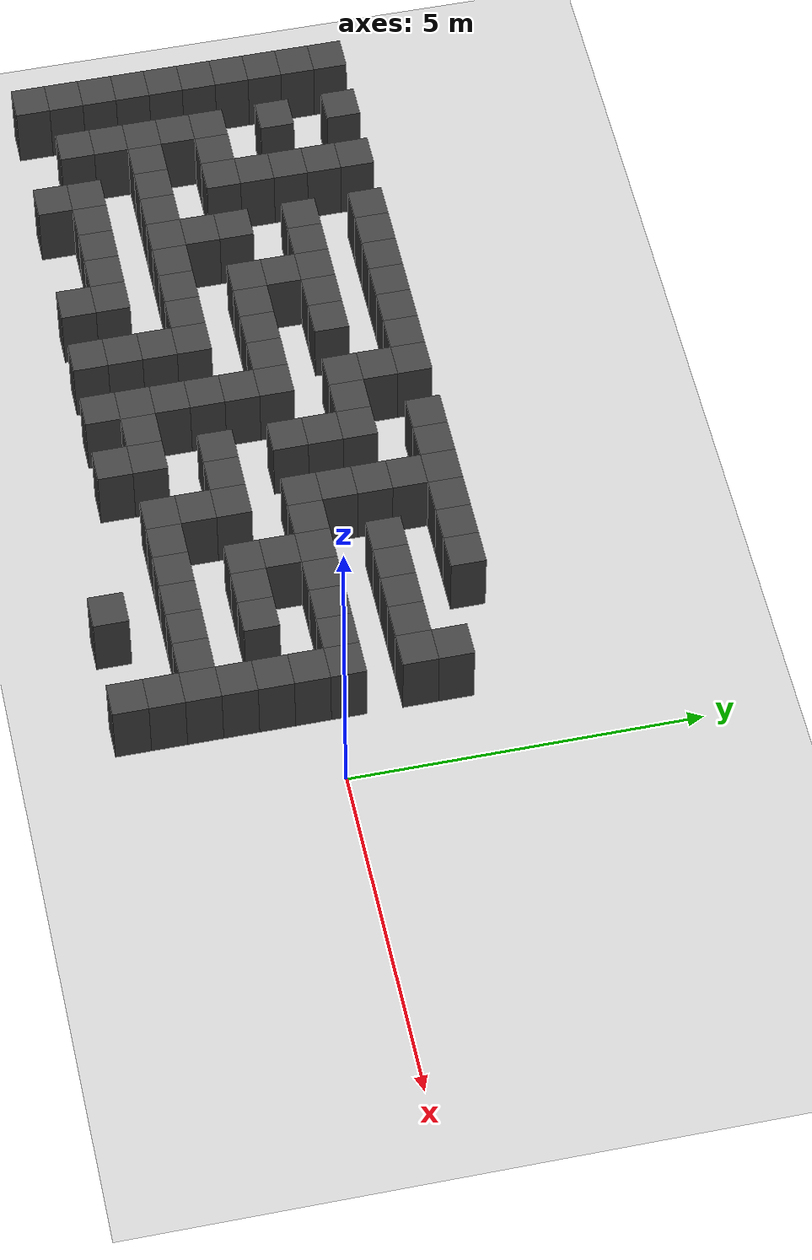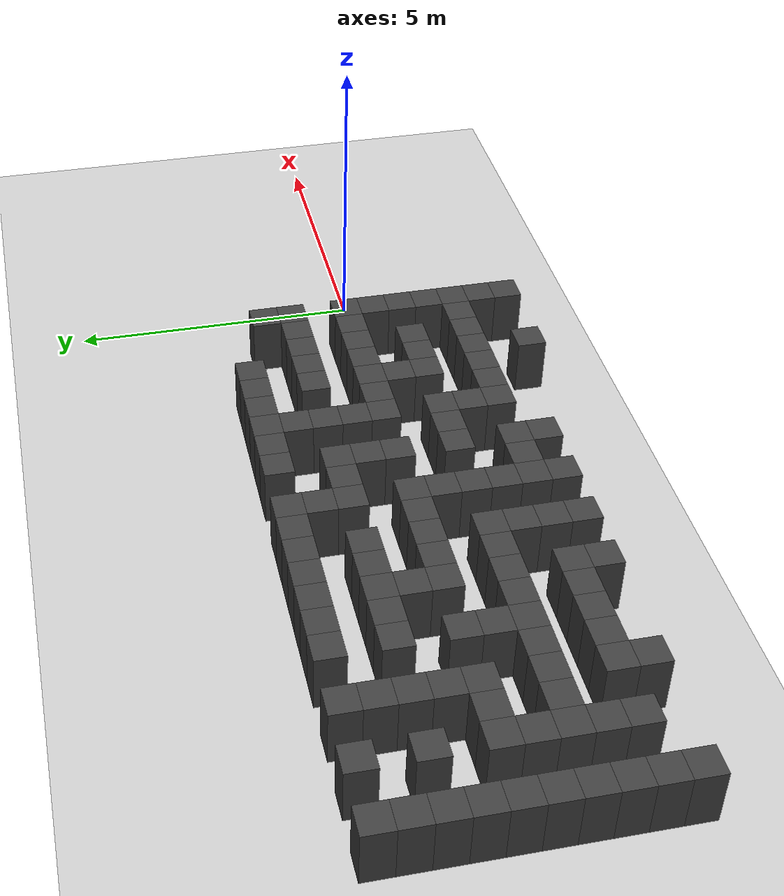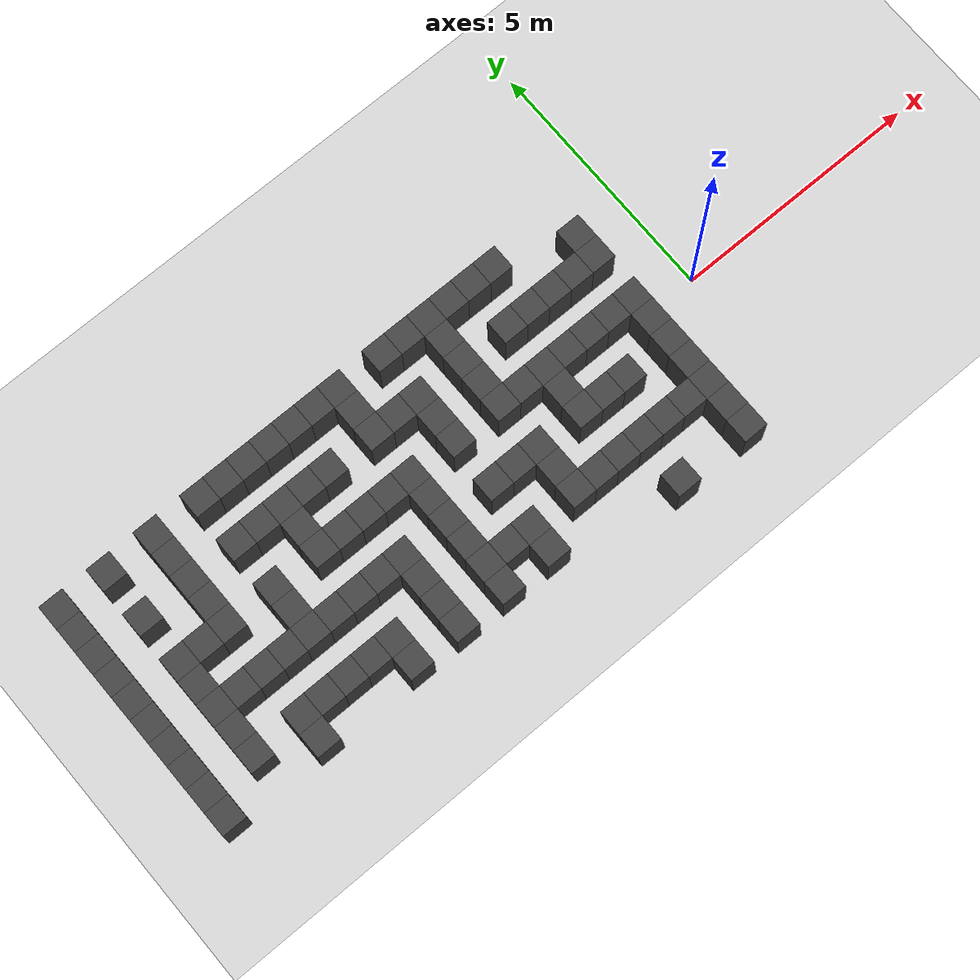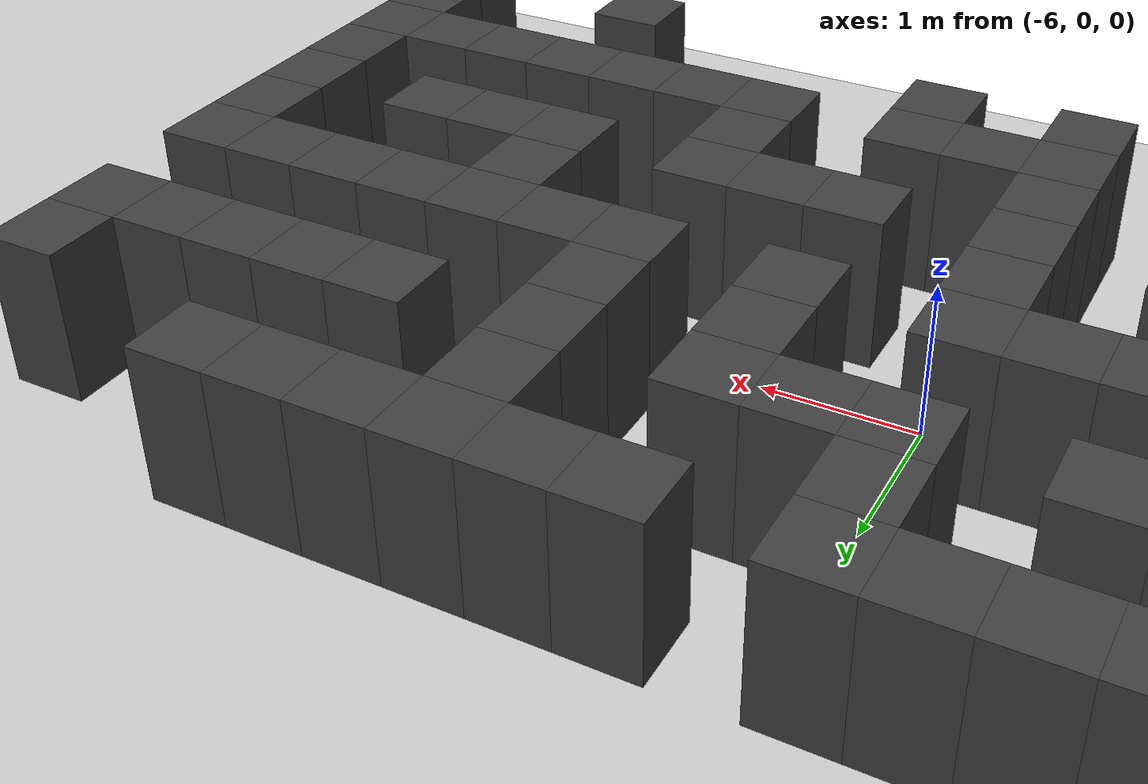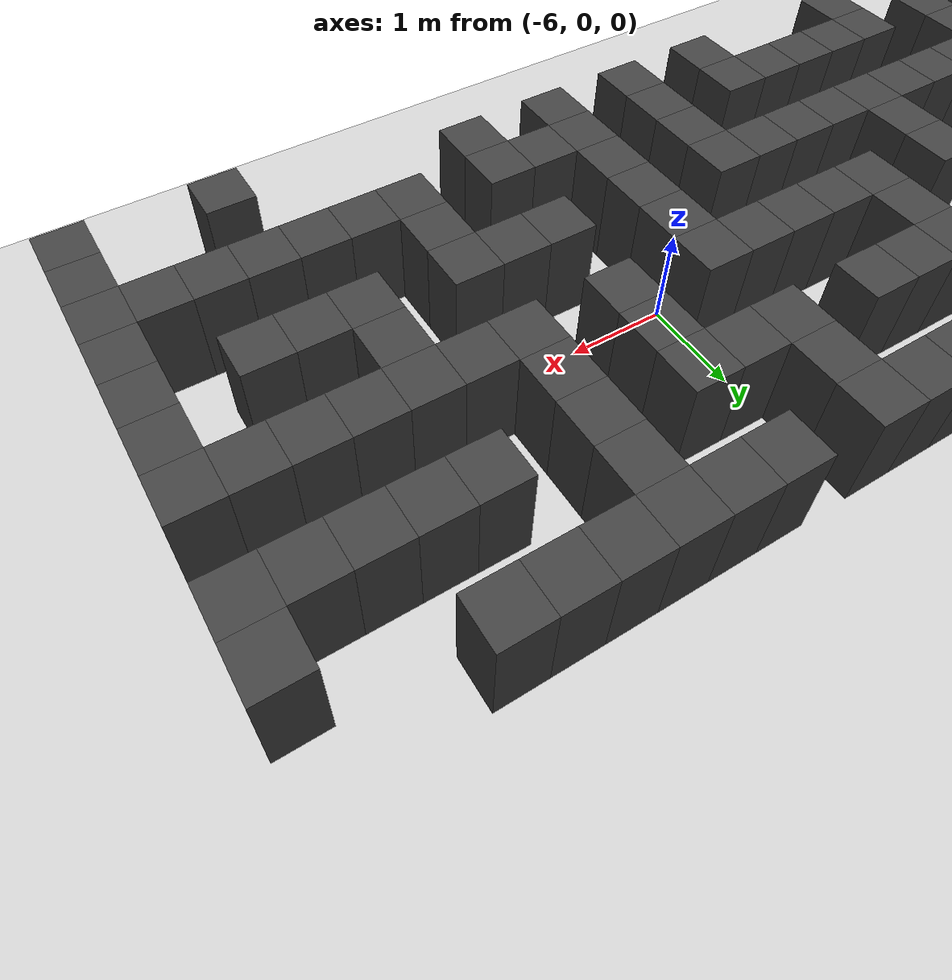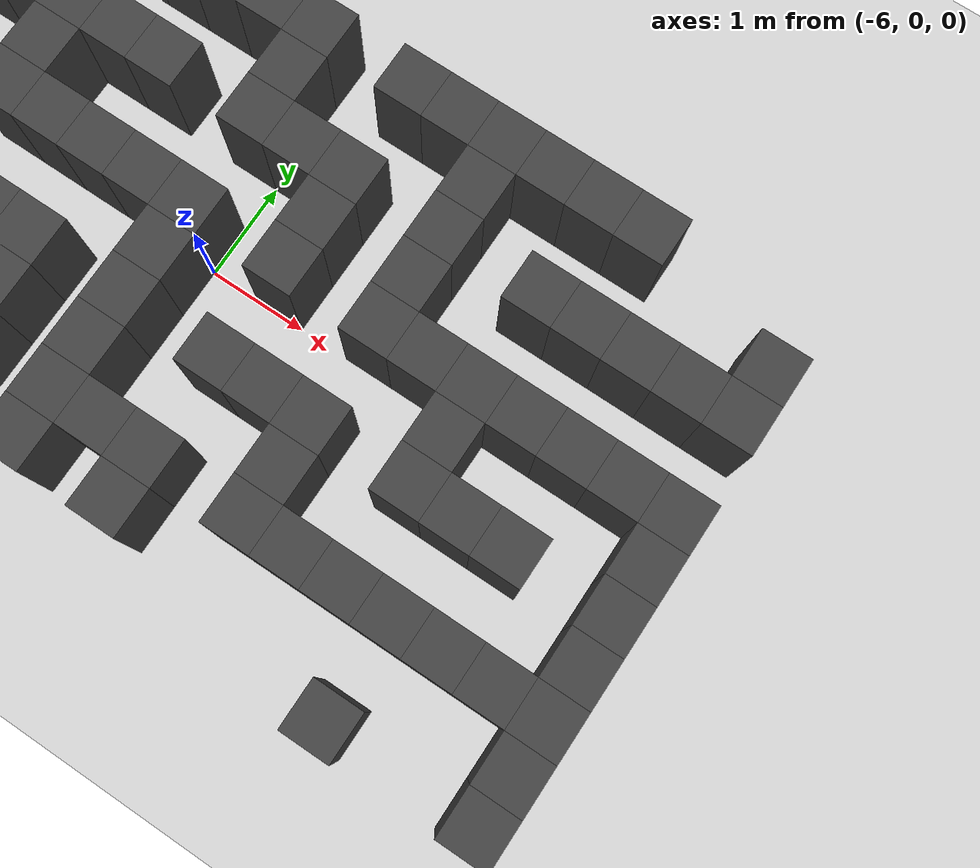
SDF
<sdf version="1.7">
 <world name="map_18347">
  <model name="ground_plane">
   <static>true</static>
   <link name="link">
    <collision name="collision">
     <geometry><plane><normal>0 0 1</normal><size>200 200</size></plane></geometry>
    </collision>
    <visual name="visual">
     <geometry><plane><normal>0 0 1</normal><size>200 200</size></plane></geometry>
     <material><ambient>0.8 0.8 0.8 1</ambient><diffuse>0.8 0.8 0.8 1</diffuse></material>
    </visual>
   </link>
  </model>
  <model name="maze_environment">
   <static>true</static>
   <link name="wall_507">
    <pose>-12.250 2.250 0.500 0 0 0</pose>
    <collision name="col"><geometry><box><size>0.5 0.5 1.0</size></box></geometry></collision>
    <visual name="vis">
     <geometry><box><size>0.5 0.5 1.0</size></box></geometry>
     <material><ambient>0.15 0.15 0.15 1</ambient><diffuse>0.25 0.25 0.25 1</diffuse></material>
    </visual>
   </link>
   <link name="wall_508">
    <pose>-11.250 2.250 0.500 0 0 0</pose>
    <collision name="col"><geometry><box><size>0.5 0.5 1.0</size></box></geometry></collision>
    <visual name="vis">
     <geometry><box><size>0.5 0.5 1.0</size></box></geometry>
     <material><ambient>0.15 0.15 0.15 1</ambient><diffuse>0.25 0.25 0.25 1</diffuse></material>
    </visual>
   </link>
   <link name="wall_509">
    <pose>-10.250 2.250 0.500 0 0 0</pose>
    <collision name="col"><geometry><box><size>0.5 0.5 1.0</size></box></geometry></collision>
    <visual name="vis">
     <geometry><box><size>0.5 0.5 1.0</size></box></geometry>
     <material><ambient>0.15 0.15 0.15 1</ambient><diffuse>0.25 0.25 0.25 1</diffuse></material>
    </visual>
   </link>
   <link name="wall_510">
    <pose>-9.250 2.250 0.500 0 0 0</pose>
    <collision name="col"><geometry><box><size>0.5 0.5 1.0</size></box></geometry></collision>
    <visual name="vis">
     <geometry><box><size>0.5 0.5 1.0</size></box></geometry>
     <material><ambient>0.15 0.15 0.15 1</ambient><diffuse>0.25 0.25 0.25 1</diffuse></material>
    </visual>
   </link>
   <link name="wall_511">
    <pose>-8.750 2.250 0.500 0 0 0</pose>
    <collision name="col"><geometry><box><size>0.5 0.5 1.0</size></box></geometry></collision>
    <visual name="vis">
     <geometry><box><size>0.5 0.5 1.0</size></box></geometry>
     <material><ambient>0.15 0.15 0.15 1</ambient><diffuse>0.25 0.25 0.25 1</diffuse></material>
    </visual>
   </link>
   <link name="wall_512">
    <pose>-8.250 2.250 0.500 0 0 0</pose>
    <collision name="col"><geometry><box><size>0.5 0.5 1.0</size></box></geometry></collision>
    <visual name="vis">
     <geometry><box><size>0.5 0.5 1.0</size></box></geometry>
     <material><ambient>0.15 0.15 0.15 1</ambient><diffuse>0.25 0.25 0.25 1</diffuse></material>
    </visual>
   </link>
   <link name="wall_513">
    <pose>-7.750 2.250 0.500 0 0 0</pose>
    <collision name="col"><geometry><box><size>0.5 0.5 1.0</size></box></geometry></collision>
    <visual name="vis">
     <geometry><box><size>0.5 0.5 1.0</size></box></geometry>
     <material><ambient>0.15 0.15 0.15 1</ambient><diffuse>0.25 0.25 0.25 1</diffuse></material>
    </visual>
   </link>
   <link name="wall_514">
    <pose>-7.250 2.250 0.500 0 0 0</pose>
    <collision name="col"><geometry><box><size>0.5 0.5 1.0</size></box></geometry></collision>
    <visual name="vis">
     <geometry><box><size>0.5 0.5 1.0</size></box></geometry>
     <material><ambient>0.15 0.15 0.15 1</ambient><diffuse>0.25 0.25 0.25 1</diffuse></material>
    </visual>
   </link>
   <link name="wall_515">
    <pose>-6.750 2.250 0.500 0 0 0</pose>
    <collision name="col"><geometry><box><size>0.5 0.5 1.0</size></box></geometry></collision>
    <visual name="vis">
     <geometry><box><size>0.5 0.5 1.0</size></box></geometry>
     <material><ambient>0.15 0.15 0.15 1</ambient><diffuse>0.25 0.25 0.25 1</diffuse></material>
    </visual>
   </link>
   <link name="wall_516">
    <pose>-6.250 2.250 0.500 0 0 0</pose>
    <collision name="col"><geometry><box><size>0.5 0.5 1.0</size></box></geometry></collision>
    <visual name="vis">
     <geometry><box><size>0.5 0.5 1.0</size></box></geometry>
     <material><ambient>0.15 0.15 0.15 1</ambient><diffuse>0.25 0.25 0.25 1</diffuse></material>
    </visual>
   </link>
   <link name="wall_517">
    <pose>-5.250 2.250 0.500 0 0 0</pose>
    <collision name="col"><geometry><box><size>0.5 0.5 1.0</size></box></geometry></collision>
    <visual name="vis">
     <geometry><box><size>0.5 0.5 1.0</size></box></geometry>
     <material><ambient>0.15 0.15 0.15 1</ambient><diffuse>0.25 0.25 0.25 1</diffuse></material>
    </visual>
   </link>
   <link name="wall_518">
    <pose>-4.750 2.250 0.500 0 0 0</pose>
    <collision name="col"><geometry><box><size>0.5 0.5 1.0</size></box></geometry></collision>
    <visual name="vis">
     <geometry><box><size>0.5 0.5 1.0</size></box></geometry>
     <material><ambient>0.15 0.15 0.15 1</ambient><diffuse>0.25 0.25 0.25 1</diffuse></material>
    </visual>
   </link>
   <link name="wall_519">
    <pose>-4.250 2.250 0.500 0 0 0</pose>
    <collision name="col"><geometry><box><size>0.5 0.5 1.0</size></box></geometry></collision>
    <visual name="vis">
     <geometry><box><size>0.5 0.5 1.0</size></box></geometry>
     <material><ambient>0.15 0.15 0.15 1</ambient><diffuse>0.25 0.25 0.25 1</diffuse></material>
    </visual>
   </link>
   <link name="wall_520">
    <pose>-3.750 2.250 0.500 0 0 0</pose>
    <collision name="col"><geometry><box><size>0.5 0.5 1.0</size></box></geometry></collision>
    <visual name="vis">
     <geometry><box><size>0.5 0.5 1.0</size></box></geometry>
     <material><ambient>0.15 0.15 0.15 1</ambient><diffuse>0.25 0.25 0.25 1</diffuse></material>
    </visual>
   </link>
   <link name="wall_521">
    <pose>-3.250 2.250 0.500 0 0 0</pose>
    <collision name="col"><geometry><box><size>0.5 0.5 1.0</size></box></geometry></collision>
    <visual name="vis">
     <geometry><box><size>0.5 0.5 1.0</size></box></geometry>
     <material><ambient>0.15 0.15 0.15 1</ambient><diffuse>0.25 0.25 0.25 1</diffuse></material>
    </visual>
   </link>
   <link name="wall_522">
    <pose>-2.750 2.250 0.500 0 0 0</pose>
    <collision name="col"><geometry><box><size>0.5 0.5 1.0</size></box></geometry></collision>
    <visual name="vis">
     <geometry><box><size>0.5 0.5 1.0</size></box></geometry>
     <material><ambient>0.15 0.15 0.15 1</ambient><diffuse>0.25 0.25 0.25 1</diffuse></material>
    </visual>
   </link>
   <link name="wall_542">
    <pose>-12.250 1.750 0.500 0 0 0</pose>
    <collision name="col"><geometry><box><size>0.5 0.5 1.0</size></box></geometry></collision>
    <visual name="vis">
     <geometry><box><size>0.5 0.5 1.0</size></box></geometry>
     <material><ambient>0.15 0.15 0.15 1</ambient><diffuse>0.25 0.25 0.25 1</diffuse></material>
    </visual>
   </link>
   <link name="wall_543">
    <pose>-10.250 1.750 0.500 0 0 0</pose>
    <collision name="col"><geometry><box><size>0.5 0.5 1.0</size></box></geometry></collision>
    <visual name="vis">
     <geometry><box><size>0.5 0.5 1.0</size></box></geometry>
     <material><ambient>0.15 0.15 0.15 1</ambient><diffuse>0.25 0.25 0.25 1</diffuse></material>
    </visual>
   </link>
   <link name="wall_544">
    <pose>-6.250 1.750 0.500 0 0 0</pose>
    <collision name="col"><geometry><box><size>0.5 0.5 1.0</size></box></geometry></collision>
    <visual name="vis">
     <geometry><box><size>0.5 0.5 1.0</size></box></geometry>
     <material><ambient>0.15 0.15 0.15 1</ambient><diffuse>0.25 0.25 0.25 1</diffuse></material>
    </visual>
   </link>
   <link name="wall_545">
    <pose>-4.250 1.750 0.500 0 0 0</pose>
    <collision name="col"><geometry><box><size>0.5 0.5 1.0</size></box></geometry></collision>
    <visual name="vis">
     <geometry><box><size>0.5 0.5 1.0</size></box></geometry>
     <material><ambient>0.15 0.15 0.15 1</ambient><diffuse>0.25 0.25 0.25 1</diffuse></material>
    </visual>
   </link>
   <link name="wall_546">
    <pose>-1.250 1.750 0.500 0 0 0</pose>
    <collision name="col"><geometry><box><size>0.5 0.5 1.0</size></box></geometry></collision>
    <visual name="vis">
     <geometry><box><size>0.5 0.5 1.0</size></box></geometry>
     <material><ambient>0.15 0.15 0.15 1</ambient><diffuse>0.25 0.25 0.25 1</diffuse></material>
    </visual>
   </link>
   <link name="wall_555">
    <pose>-12.250 1.250 0.500 0 0 0</pose>
    <collision name="col"><geometry><box><size>0.5 0.5 1.0</size></box></geometry></collision>
    <visual name="vis">
     <geometry><box><size>0.5 0.5 1.0</size></box></geometry>
     <material><ambient>0.15 0.15 0.15 1</ambient><diffuse>0.25 0.25 0.25 1</diffuse></material>
    </visual>
   </link>
   <link name="wall_556">
    <pose>-11.250 1.250 0.500 0 0 0</pose>
    <collision name="col"><geometry><box><size>0.5 0.5 1.0</size></box></geometry></collision>
    <visual name="vis">
     <geometry><box><size>0.5 0.5 1.0</size></box></geometry>
     <material><ambient>0.15 0.15 0.15 1</ambient><diffuse>0.25 0.25 0.25 1</diffuse></material>
    </visual>
   </link>
   <link name="wall_557">
    <pose>-10.250 1.250 0.500 0 0 0</pose>
    <collision name="col"><geometry><box><size>0.5 0.5 1.0</size></box></geometry></collision>
    <visual name="vis">
     <geometry><box><size>0.5 0.5 1.0</size></box></geometry>
     <material><ambient>0.15 0.15 0.15 1</ambient><diffuse>0.25 0.25 0.25 1</diffuse></material>
    </visual>
   </link>
   <link name="wall_558">
    <pose>-9.250 1.250 0.500 0 0 0</pose>
    <collision name="col"><geometry><box><size>0.5 0.5 1.0</size></box></geometry></collision>
    <visual name="vis">
     <geometry><box><size>0.5 0.5 1.0</size></box></geometry>
     <material><ambient>0.15 0.15 0.15 1</ambient><diffuse>0.25 0.25 0.25 1</diffuse></material>
    </visual>
   </link>
   <link name="wall_559">
    <pose>-8.750 1.250 0.500 0 0 0</pose>
    <collision name="col"><geometry><box><size>0.5 0.5 1.0</size></box></geometry></collision>
    <visual name="vis">
     <geometry><box><size>0.5 0.5 1.0</size></box></geometry>
     <material><ambient>0.15 0.15 0.15 1</ambient><diffuse>0.25 0.25 0.25 1</diffuse></material>
    </visual>
   </link>
   <link name="wall_560">
    <pose>-8.250 1.250 0.500 0 0 0</pose>
    <collision name="col"><geometry><box><size>0.5 0.5 1.0</size></box></geometry></collision>
    <visual name="vis">
     <geometry><box><size>0.5 0.5 1.0</size></box></geometry>
     <material><ambient>0.15 0.15 0.15 1</ambient><diffuse>0.25 0.25 0.25 1</diffuse></material>
    </visual>
   </link>
   <link name="wall_561">
    <pose>-7.750 1.250 0.500 0 0 0</pose>
    <collision name="col"><geometry><box><size>0.5 0.5 1.0</size></box></geometry></collision>
    <visual name="vis">
     <geometry><box><size>0.5 0.5 1.0</size></box></geometry>
     <material><ambient>0.15 0.15 0.15 1</ambient><diffuse>0.25 0.25 0.25 1</diffuse></material>
    </visual>
   </link>
   <link name="wall_562">
    <pose>-7.250 1.250 0.500 0 0 0</pose>
    <collision name="col"><geometry><box><size>0.5 0.5 1.0</size></box></geometry></collision>
    <visual name="vis">
     <geometry><box><size>0.5 0.5 1.0</size></box></geometry>
     <material><ambient>0.15 0.15 0.15 1</ambient><diffuse>0.25 0.25 0.25 1</diffuse></material>
    </visual>
   </link>
   <link name="wall_563">
    <pose>-6.250 1.250 0.500 0 0 0</pose>
    <collision name="col"><geometry><box><size>0.5 0.5 1.0</size></box></geometry></collision>
    <visual name="vis">
     <geometry><box><size>0.5 0.5 1.0</size></box></geometry>
     <material><ambient>0.15 0.15 0.15 1</ambient><diffuse>0.25 0.25 0.25 1</diffuse></material>
    </visual>
   </link>
   <link name="wall_564">
    <pose>-5.750 1.250 0.500 0 0 0</pose>
    <collision name="col"><geometry><box><size>0.5 0.5 1.0</size></box></geometry></collision>
    <visual name="vis">
     <geometry><box><size>0.5 0.5 1.0</size></box></geometry>
     <material><ambient>0.15 0.15 0.15 1</ambient><diffuse>0.25 0.25 0.25 1</diffuse></material>
    </visual>
   </link>
   <link name="wall_565">
    <pose>-5.250 1.250 0.500 0 0 0</pose>
    <collision name="col"><geometry><box><size>0.5 0.5 1.0</size></box></geometry></collision>
    <visual name="vis">
     <geometry><box><size>0.5 0.5 1.0</size></box></geometry>
     <material><ambient>0.15 0.15 0.15 1</ambient><diffuse>0.25 0.25 0.25 1</diffuse></material>
    </visual>
   </link>
   <link name="wall_566">
    <pose>-4.250 1.250 0.500 0 0 0</pose>
    <collision name="col"><geometry><box><size>0.5 0.5 1.0</size></box></geometry></collision>
    <visual name="vis">
     <geometry><box><size>0.5 0.5 1.0</size></box></geometry>
     <material><ambient>0.15 0.15 0.15 1</ambient><diffuse>0.25 0.25 0.25 1</diffuse></material>
    </visual>
   </link>
   <link name="wall_567">
    <pose>-3.250 1.250 0.500 0 0 0</pose>
    <collision name="col"><geometry><box><size>0.5 0.5 1.0</size></box></geometry></collision>
    <visual name="vis">
     <geometry><box><size>0.5 0.5 1.0</size></box></geometry>
     <material><ambient>0.15 0.15 0.15 1</ambient><diffuse>0.25 0.25 0.25 1</diffuse></material>
    </visual>
   </link>
   <link name="wall_568">
    <pose>-2.750 1.250 0.500 0 0 0</pose>
    <collision name="col"><geometry><box><size>0.5 0.5 1.0</size></box></geometry></collision>
    <visual name="vis">
     <geometry><box><size>0.5 0.5 1.0</size></box></geometry>
     <material><ambient>0.15 0.15 0.15 1</ambient><diffuse>0.25 0.25 0.25 1</diffuse></material>
    </visual>
   </link>
   <link name="wall_569">
    <pose>-2.250 1.250 0.500 0 0 0</pose>
    <collision name="col"><geometry><box><size>0.5 0.5 1.0</size></box></geometry></collision>
    <visual name="vis">
     <geometry><box><size>0.5 0.5 1.0</size></box></geometry>
     <material><ambient>0.15 0.15 0.15 1</ambient><diffuse>0.25 0.25 0.25 1</diffuse></material>
    </visual>
   </link>
   <link name="wall_570">
    <pose>-1.750 1.250 0.500 0 0 0</pose>
    <collision name="col"><geometry><box><size>0.5 0.5 1.0</size></box></geometry></collision>
    <visual name="vis">
     <geometry><box><size>0.5 0.5 1.0</size></box></geometry>
     <material><ambient>0.15 0.15 0.15 1</ambient><diffuse>0.25 0.25 0.25 1</diffuse></material>
    </visual>
   </link>
   <link name="wall_571">
    <pose>-1.250 1.250 0.500 0 0 0</pose>
    <collision name="col"><geometry><box><size>0.5 0.5 1.0</size></box></geometry></collision>
    <visual name="vis">
     <geometry><box><size>0.5 0.5 1.0</size></box></geometry>
     <material><ambient>0.15 0.15 0.15 1</ambient><diffuse>0.25 0.25 0.25 1</diffuse></material>
    </visual>
   </link>
   <link name="wall_593">
    <pose>-12.250 0.750 0.500 0 0 0</pose>
    <collision name="col"><geometry><box><size>0.5 0.5 1.0</size></box></geometry></collision>
    <visual name="vis">
     <geometry><box><size>0.5 0.5 1.0</size></box></geometry>
     <material><ambient>0.15 0.15 0.15 1</ambient><diffuse>0.25 0.25 0.25 1</diffuse></material>
    </visual>
   </link>
   <link name="wall_594">
    <pose>-10.250 0.750 0.500 0 0 0</pose>
    <collision name="col"><geometry><box><size>0.5 0.5 1.0</size></box></geometry></collision>
    <visual name="vis">
     <geometry><box><size>0.5 0.5 1.0</size></box></geometry>
     <material><ambient>0.15 0.15 0.15 1</ambient><diffuse>0.25 0.25 0.25 1</diffuse></material>
    </visual>
   </link>
   <link name="wall_595">
    <pose>-8.250 0.750 0.500 0 0 0</pose>
    <collision name="col"><geometry><box><size>0.5 0.5 1.0</size></box></geometry></collision>
    <visual name="vis">
     <geometry><box><size>0.5 0.5 1.0</size></box></geometry>
     <material><ambient>0.15 0.15 0.15 1</ambient><diffuse>0.25 0.25 0.25 1</diffuse></material>
    </visual>
   </link>
   <link name="wall_596">
    <pose>-5.250 0.750 0.500 0 0 0</pose>
    <collision name="col"><geometry><box><size>0.5 0.5 1.0</size></box></geometry></collision>
    <visual name="vis">
     <geometry><box><size>0.5 0.5 1.0</size></box></geometry>
     <material><ambient>0.15 0.15 0.15 1</ambient><diffuse>0.25 0.25 0.25 1</diffuse></material>
    </visual>
   </link>
   <link name="wall_597">
    <pose>-4.250 0.750 0.500 0 0 0</pose>
    <collision name="col"><geometry><box><size>0.5 0.5 1.0</size></box></geometry></collision>
    <visual name="vis">
     <geometry><box><size>0.5 0.5 1.0</size></box></geometry>
     <material><ambient>0.15 0.15 0.15 1</ambient><diffuse>0.25 0.25 0.25 1</diffuse></material>
    </visual>
   </link>
   <link name="wall_606">
    <pose>-12.250 0.250 0.500 0 0 0</pose>
    <collision name="col"><geometry><box><size>0.5 0.5 1.0</size></box></geometry></collision>
    <visual name="vis">
     <geometry><box><size>0.5 0.5 1.0</size></box></geometry>
     <material><ambient>0.15 0.15 0.15 1</ambient><diffuse>0.25 0.25 0.25 1</diffuse></material>
    </visual>
   </link>
   <link name="wall_607">
    <pose>-11.250 0.250 0.500 0 0 0</pose>
    <collision name="col"><geometry><box><size>0.5 0.5 1.0</size></box></geometry></collision>
    <visual name="vis">
     <geometry><box><size>0.5 0.5 1.0</size></box></geometry>
     <material><ambient>0.15 0.15 0.15 1</ambient><diffuse>0.25 0.25 0.25 1</diffuse></material>
    </visual>
   </link>
   <link name="wall_608">
    <pose>-10.750 0.250 0.500 0 0 0</pose>
    <collision name="col"><geometry><box><size>0.5 0.5 1.0</size></box></geometry></collision>
    <visual name="vis">
     <geometry><box><size>0.5 0.5 1.0</size></box></geometry>
     <material><ambient>0.15 0.15 0.15 1</ambient><diffuse>0.25 0.25 0.25 1</diffuse></material>
    </visual>
   </link>
   <link name="wall_609">
    <pose>-10.250 0.250 0.500 0 0 0</pose>
    <collision name="col"><geometry><box><size>0.5 0.5 1.0</size></box></geometry></collision>
    <visual name="vis">
     <geometry><box><size>0.5 0.5 1.0</size></box></geometry>
     <material><ambient>0.15 0.15 0.15 1</ambient><diffuse>0.25 0.25 0.25 1</diffuse></material>
    </visual>
   </link>
   <link name="wall_610">
    <pose>-9.250 0.250 0.500 0 0 0</pose>
    <collision name="col"><geometry><box><size>0.5 0.5 1.0</size></box></geometry></collision>
    <visual name="vis">
     <geometry><box><size>0.5 0.5 1.0</size></box></geometry>
     <material><ambient>0.15 0.15 0.15 1</ambient><diffuse>0.25 0.25 0.25 1</diffuse></material>
    </visual>
   </link>
   <link name="wall_611">
    <pose>-8.250 0.250 0.500 0 0 0</pose>
    <collision name="col"><geometry><box><size>0.5 0.5 1.0</size></box></geometry></collision>
    <visual name="vis">
     <geometry><box><size>0.5 0.5 1.0</size></box></geometry>
     <material><ambient>0.15 0.15 0.15 1</ambient><diffuse>0.25 0.25 0.25 1</diffuse></material>
    </visual>
   </link>
   <link name="wall_612">
    <pose>-7.750 0.250 0.500 0 0 0</pose>
    <collision name="col"><geometry><box><size>0.5 0.5 1.0</size></box></geometry></collision>
    <visual name="vis">
     <geometry><box><size>0.5 0.5 1.0</size></box></geometry>
     <material><ambient>0.15 0.15 0.15 1</ambient><diffuse>0.25 0.25 0.25 1</diffuse></material>
    </visual>
   </link>
   <link name="wall_613">
    <pose>-7.250 0.250 0.500 0 0 0</pose>
    <collision name="col"><geometry><box><size>0.5 0.5 1.0</size></box></geometry></collision>
    <visual name="vis">
     <geometry><box><size>0.5 0.5 1.0</size></box></geometry>
     <material><ambient>0.15 0.15 0.15 1</ambient><diffuse>0.25 0.25 0.25 1</diffuse></material>
    </visual>
   </link>
   <link name="wall_614">
    <pose>-6.750 0.250 0.500 0 0 0</pose>
    <collision name="col"><geometry><box><size>0.5 0.5 1.0</size></box></geometry></collision>
    <visual name="vis">
     <geometry><box><size>0.5 0.5 1.0</size></box></geometry>
     <material><ambient>0.15 0.15 0.15 1</ambient><diffuse>0.25 0.25 0.25 1</diffuse></material>
    </visual>
   </link>
   <link name="wall_615">
    <pose>-6.250 0.250 0.500 0 0 0</pose>
    <collision name="col"><geometry><box><size>0.5 0.5 1.0</size></box></geometry></collision>
    <visual name="vis">
     <geometry><box><size>0.5 0.5 1.0</size></box></geometry>
     <material><ambient>0.15 0.15 0.15 1</ambient><diffuse>0.25 0.25 0.25 1</diffuse></material>
    </visual>
   </link>
   <link name="wall_616">
    <pose>-5.250 0.250 0.500 0 0 0</pose>
    <collision name="col"><geometry><box><size>0.5 0.5 1.0</size></box></geometry></collision>
    <visual name="vis">
     <geometry><box><size>0.5 0.5 1.0</size></box></geometry>
     <material><ambient>0.15 0.15 0.15 1</ambient><diffuse>0.25 0.25 0.25 1</diffuse></material>
    </visual>
   </link>
   <link name="wall_617">
    <pose>-4.250 0.250 0.500 0 0 0</pose>
    <collision name="col"><geometry><box><size>0.5 0.5 1.0</size></box></geometry></collision>
    <visual name="vis">
     <geometry><box><size>0.5 0.5 1.0</size></box></geometry>
     <material><ambient>0.15 0.15 0.15 1</ambient><diffuse>0.25 0.25 0.25 1</diffuse></material>
    </visual>
   </link>
   <link name="wall_618">
    <pose>-3.750 0.250 0.500 0 0 0</pose>
    <collision name="col"><geometry><box><size>0.5 0.5 1.0</size></box></geometry></collision>
    <visual name="vis">
     <geometry><box><size>0.5 0.5 1.0</size></box></geometry>
     <material><ambient>0.15 0.15 0.15 1</ambient><diffuse>0.25 0.25 0.25 1</diffuse></material>
    </visual>
   </link>
   <link name="wall_619">
    <pose>-3.250 0.250 0.500 0 0 0</pose>
    <collision name="col"><geometry><box><size>0.5 0.5 1.0</size></box></geometry></collision>
    <visual name="vis">
     <geometry><box><size>0.5 0.5 1.0</size></box></geometry>
     <material><ambient>0.15 0.15 0.15 1</ambient><diffuse>0.25 0.25 0.25 1</diffuse></material>
    </visual>
   </link>
   <link name="wall_620">
    <pose>-2.750 0.250 0.500 0 0 0</pose>
    <collision name="col"><geometry><box><size>0.5 0.5 1.0</size></box></geometry></collision>
    <visual name="vis">
     <geometry><box><size>0.5 0.5 1.0</size></box></geometry>
     <material><ambient>0.15 0.15 0.15 1</ambient><diffuse>0.25 0.25 0.25 1</diffuse></material>
    </visual>
   </link>
   <link name="wall_621">
    <pose>-2.250 0.250 0.500 0 0 0</pose>
    <collision name="col"><geometry><box><size>0.5 0.5 1.0</size></box></geometry></collision>
    <visual name="vis">
     <geometry><box><size>0.5 0.5 1.0</size></box></geometry>
     <material><ambient>0.15 0.15 0.15 1</ambient><diffuse>0.25 0.25 0.25 1</diffuse></material>
    </visual>
   </link>
   <link name="wall_622">
    <pose>-1.750 0.250 0.500 0 0 0</pose>
    <collision name="col"><geometry><box><size>0.5 0.5 1.0</size></box></geometry></collision>
    <visual name="vis">
     <geometry><box><size>0.5 0.5 1.0</size></box></geometry>
     <material><ambient>0.15 0.15 0.15 1</ambient><diffuse>0.25 0.25 0.25 1</diffuse></material>
    </visual>
   </link>
   <link name="wall_623">
    <pose>-1.250 0.250 0.500 0 0 0</pose>
    <collision name="col"><geometry><box><size>0.5 0.5 1.0</size></box></geometry></collision>
    <visual name="vis">
     <geometry><box><size>0.5 0.5 1.0</size></box></geometry>
     <material><ambient>0.15 0.15 0.15 1</ambient><diffuse>0.25 0.25 0.25 1</diffuse></material>
    </visual>
   </link>
   <link name="wall_645">
    <pose>-12.250 -0.250 0.500 0 0 0</pose>
    <collision name="col"><geometry><box><size>0.5 0.5 1.0</size></box></geometry></collision>
    <visual name="vis">
     <geometry><box><size>0.5 0.5 1.0</size></box></geometry>
     <material><ambient>0.15 0.15 0.15 1</ambient><diffuse>0.25 0.25 0.25 1</diffuse></material>
    </visual>
   </link>
   <link name="wall_646">
    <pose>-11.250 -0.250 0.500 0 0 0</pose>
    <collision name="col"><geometry><box><size>0.5 0.5 1.0</size></box></geometry></collision>
    <visual name="vis">
     <geometry><box><size>0.5 0.5 1.0</size></box></geometry>
     <material><ambient>0.15 0.15 0.15 1</ambient><diffuse>0.25 0.25 0.25 1</diffuse></material>
    </visual>
   </link>
   <link name="wall_647">
    <pose>-9.250 -0.250 0.500 0 0 0</pose>
    <collision name="col"><geometry><box><size>0.5 0.5 1.0</size></box></geometry></collision>
    <visual name="vis">
     <geometry><box><size>0.5 0.5 1.0</size></box></geometry>
     <material><ambient>0.15 0.15 0.15 1</ambient><diffuse>0.25 0.25 0.25 1</diffuse></material>
    </visual>
   </link>
   <link name="wall_648">
    <pose>-6.250 -0.250 0.500 0 0 0</pose>
    <collision name="col"><geometry><box><size>0.5 0.5 1.0</size></box></geometry></collision>
    <visual name="vis">
     <geometry><box><size>0.5 0.5 1.0</size></box></geometry>
     <material><ambient>0.15 0.15 0.15 1</ambient><diffuse>0.25 0.25 0.25 1</diffuse></material>
    </visual>
   </link>
   <link name="wall_649">
    <pose>-3.250 -0.250 0.500 0 0 0</pose>
    <collision name="col"><geometry><box><size>0.5 0.5 1.0</size></box></geometry></collision>
    <visual name="vis">
     <geometry><box><size>0.5 0.5 1.0</size></box></geometry>
     <material><ambient>0.15 0.15 0.15 1</ambient><diffuse>0.25 0.25 0.25 1</diffuse></material>
    </visual>
   </link>
   <link name="wall_650">
    <pose>-1.250 -0.250 0.500 0 0 0</pose>
    <collision name="col"><geometry><box><size>0.5 0.5 1.0</size></box></geometry></collision>
    <visual name="vis">
     <geometry><box><size>0.5 0.5 1.0</size></box></geometry>
     <material><ambient>0.15 0.15 0.15 1</ambient><diffuse>0.25 0.25 0.25 1</diffuse></material>
    </visual>
   </link>
   <link name="wall_657">
    <pose>-12.250 -0.750 0.500 0 0 0</pose>
    <collision name="col"><geometry><box><size>0.5 0.5 1.0</size></box></geometry></collision>
    <visual name="vis">
     <geometry><box><size>0.5 0.5 1.0</size></box></geometry>
     <material><ambient>0.15 0.15 0.15 1</ambient><diffuse>0.25 0.25 0.25 1</diffuse></material>
    </visual>
   </link>
   <link name="wall_658">
    <pose>-11.250 -0.750 0.500 0 0 0</pose>
    <collision name="col"><geometry><box><size>0.5 0.5 1.0</size></box></geometry></collision>
    <visual name="vis">
     <geometry><box><size>0.5 0.5 1.0</size></box></geometry>
     <material><ambient>0.15 0.15 0.15 1</ambient><diffuse>0.25 0.25 0.25 1</diffuse></material>
    </visual>
   </link>
   <link name="wall_659">
    <pose>-10.750 -0.750 0.500 0 0 0</pose>
    <collision name="col"><geometry><box><size>0.5 0.5 1.0</size></box></geometry></collision>
    <visual name="vis">
     <geometry><box><size>0.5 0.5 1.0</size></box></geometry>
     <material><ambient>0.15 0.15 0.15 1</ambient><diffuse>0.25 0.25 0.25 1</diffuse></material>
    </visual>
   </link>
   <link name="wall_660">
    <pose>-10.250 -0.750 0.500 0 0 0</pose>
    <collision name="col"><geometry><box><size>0.5 0.5 1.0</size></box></geometry></collision>
    <visual name="vis">
     <geometry><box><size>0.5 0.5 1.0</size></box></geometry>
     <material><ambient>0.15 0.15 0.15 1</ambient><diffuse>0.25 0.25 0.25 1</diffuse></material>
    </visual>
   </link>
   <link name="wall_661">
    <pose>-9.750 -0.750 0.500 0 0 0</pose>
    <collision name="col"><geometry><box><size>0.5 0.5 1.0</size></box></geometry></collision>
    <visual name="vis">
     <geometry><box><size>0.5 0.5 1.0</size></box></geometry>
     <material><ambient>0.15 0.15 0.15 1</ambient><diffuse>0.25 0.25 0.25 1</diffuse></material>
    </visual>
   </link>
   <link name="wall_662">
    <pose>-9.250 -0.750 0.500 0 0 0</pose>
    <collision name="col"><geometry><box><size>0.5 0.5 1.0</size></box></geometry></collision>
    <visual name="vis">
     <geometry><box><size>0.5 0.5 1.0</size></box></geometry>
     <material><ambient>0.15 0.15 0.15 1</ambient><diffuse>0.25 0.25 0.25 1</diffuse></material>
    </visual>
   </link>
   <link name="wall_663">
    <pose>-8.750 -0.750 0.500 0 0 0</pose>
    <collision name="col"><geometry><box><size>0.5 0.5 1.0</size></box></geometry></collision>
    <visual name="vis">
     <geometry><box><size>0.5 0.5 1.0</size></box></geometry>
     <material><ambient>0.15 0.15 0.15 1</ambient><diffuse>0.25 0.25 0.25 1</diffuse></material>
    </visual>
   </link>
   <link name="wall_664">
    <pose>-8.250 -0.750 0.500 0 0 0</pose>
    <collision name="col"><geometry><box><size>0.5 0.5 1.0</size></box></geometry></collision>
    <visual name="vis">
     <geometry><box><size>0.5 0.5 1.0</size></box></geometry>
     <material><ambient>0.15 0.15 0.15 1</ambient><diffuse>0.25 0.25 0.25 1</diffuse></material>
    </visual>
   </link>
   <link name="wall_665">
    <pose>-7.750 -0.750 0.500 0 0 0</pose>
    <collision name="col"><geometry><box><size>0.5 0.5 1.0</size></box></geometry></collision>
    <visual name="vis">
     <geometry><box><size>0.5 0.5 1.0</size></box></geometry>
     <material><ambient>0.15 0.15 0.15 1</ambient><diffuse>0.25 0.25 0.25 1</diffuse></material>
    </visual>
   </link>
   <link name="wall_666">
    <pose>-7.250 -0.750 0.500 0 0 0</pose>
    <collision name="col"><geometry><box><size>0.5 0.5 1.0</size></box></geometry></collision>
    <visual name="vis">
     <geometry><box><size>0.5 0.5 1.0</size></box></geometry>
     <material><ambient>0.15 0.15 0.15 1</ambient><diffuse>0.25 0.25 0.25 1</diffuse></material>
    </visual>
   </link>
   <link name="wall_667">
    <pose>-6.250 -0.750 0.500 0 0 0</pose>
    <collision name="col"><geometry><box><size>0.5 0.5 1.0</size></box></geometry></collision>
    <visual name="vis">
     <geometry><box><size>0.5 0.5 1.0</size></box></geometry>
     <material><ambient>0.15 0.15 0.15 1</ambient><diffuse>0.25 0.25 0.25 1</diffuse></material>
    </visual>
   </link>
   <link name="wall_668">
    <pose>-5.250 -0.750 0.500 0 0 0</pose>
    <collision name="col"><geometry><box><size>0.5 0.5 1.0</size></box></geometry></collision>
    <visual name="vis">
     <geometry><box><size>0.5 0.5 1.0</size></box></geometry>
     <material><ambient>0.15 0.15 0.15 1</ambient><diffuse>0.25 0.25 0.25 1</diffuse></material>
    </visual>
   </link>
   <link name="wall_669">
    <pose>-4.750 -0.750 0.500 0 0 0</pose>
    <collision name="col"><geometry><box><size>0.5 0.5 1.0</size></box></geometry></collision>
    <visual name="vis">
     <geometry><box><size>0.5 0.5 1.0</size></box></geometry>
     <material><ambient>0.15 0.15 0.15 1</ambient><diffuse>0.25 0.25 0.25 1</diffuse></material>
    </visual>
   </link>
   <link name="wall_670">
    <pose>-4.250 -0.750 0.500 0 0 0</pose>
    <collision name="col"><geometry><box><size>0.5 0.5 1.0</size></box></geometry></collision>
    <visual name="vis">
     <geometry><box><size>0.5 0.5 1.0</size></box></geometry>
     <material><ambient>0.15 0.15 0.15 1</ambient><diffuse>0.25 0.25 0.25 1</diffuse></material>
    </visual>
   </link>
   <link name="wall_671">
    <pose>-3.250 -0.750 0.500 0 0 0</pose>
    <collision name="col"><geometry><box><size>0.5 0.5 1.0</size></box></geometry></collision>
    <visual name="vis">
     <geometry><box><size>0.5 0.5 1.0</size></box></geometry>
     <material><ambient>0.15 0.15 0.15 1</ambient><diffuse>0.25 0.25 0.25 1</diffuse></material>
    </visual>
   </link>
   <link name="wall_672">
    <pose>-2.750 -0.750 0.500 0 0 0</pose>
    <collision name="col"><geometry><box><size>0.5 0.5 1.0</size></box></geometry></collision>
    <visual name="vis">
     <geometry><box><size>0.5 0.5 1.0</size></box></geometry>
     <material><ambient>0.15 0.15 0.15 1</ambient><diffuse>0.25 0.25 0.25 1</diffuse></material>
    </visual>
   </link>
   <link name="wall_673">
    <pose>-2.250 -0.750 0.500 0 0 0</pose>
    <collision name="col"><geometry><box><size>0.5 0.5 1.0</size></box></geometry></collision>
    <visual name="vis">
     <geometry><box><size>0.5 0.5 1.0</size></box></geometry>
     <material><ambient>0.15 0.15 0.15 1</ambient><diffuse>0.25 0.25 0.25 1</diffuse></material>
    </visual>
   </link>
   <link name="wall_674">
    <pose>-1.250 -0.750 0.500 0 0 0</pose>
    <collision name="col"><geometry><box><size>0.5 0.5 1.0</size></box></geometry></collision>
    <visual name="vis">
     <geometry><box><size>0.5 0.5 1.0</size></box></geometry>
     <material><ambient>0.15 0.15 0.15 1</ambient><diffuse>0.25 0.25 0.25 1</diffuse></material>
    </visual>
   </link>
   <link name="wall_695">
    <pose>-12.250 -1.250 0.500 0 0 0</pose>
    <collision name="col"><geometry><box><size>0.5 0.5 1.0</size></box></geometry></collision>
    <visual name="vis">
     <geometry><box><size>0.5 0.5 1.0</size></box></geometry>
     <material><ambient>0.15 0.15 0.15 1</ambient><diffuse>0.25 0.25 0.25 1</diffuse></material>
    </visual>
   </link>
   <link name="wall_696">
    <pose>-11.250 -1.250 0.500 0 0 0</pose>
    <collision name="col"><geometry><box><size>0.5 0.5 1.0</size></box></geometry></collision>
    <visual name="vis">
     <geometry><box><size>0.5 0.5 1.0</size></box></geometry>
     <material><ambient>0.15 0.15 0.15 1</ambient><diffuse>0.25 0.25 0.25 1</diffuse></material>
    </visual>
   </link>
   <link name="wall_697">
    <pose>-7.250 -1.250 0.500 0 0 0</pose>
    <collision name="col"><geometry><box><size>0.5 0.5 1.0</size></box></geometry></collision>
    <visual name="vis">
     <geometry><box><size>0.5 0.5 1.0</size></box></geometry>
     <material><ambient>0.15 0.15 0.15 1</ambient><diffuse>0.25 0.25 0.25 1</diffuse></material>
    </visual>
   </link>
   <link name="wall_698">
    <pose>-6.250 -1.250 0.500 0 0 0</pose>
    <collision name="col"><geometry><box><size>0.5 0.5 1.0</size></box></geometry></collision>
    <visual name="vis">
     <geometry><box><size>0.5 0.5 1.0</size></box></geometry>
     <material><ambient>0.15 0.15 0.15 1</ambient><diffuse>0.25 0.25 0.25 1</diffuse></material>
    </visual>
   </link>
   <link name="wall_699">
    <pose>-4.250 -1.250 0.500 0 0 0</pose>
    <collision name="col"><geometry><box><size>0.5 0.5 1.0</size></box></geometry></collision>
    <visual name="vis">
     <geometry><box><size>0.5 0.5 1.0</size></box></geometry>
     <material><ambient>0.15 0.15 0.15 1</ambient><diffuse>0.25 0.25 0.25 1</diffuse></material>
    </visual>
   </link>
   <link name="wall_700">
    <pose>-1.250 -1.250 0.500 0 0 0</pose>
    <collision name="col"><geometry><box><size>0.5 0.5 1.0</size></box></geometry></collision>
    <visual name="vis">
     <geometry><box><size>0.5 0.5 1.0</size></box></geometry>
     <material><ambient>0.15 0.15 0.15 1</ambient><diffuse>0.25 0.25 0.25 1</diffuse></material>
    </visual>
   </link>
   <link name="wall_707">
    <pose>-12.250 -1.750 0.500 0 0 0</pose>
    <collision name="col"><geometry><box><size>0.5 0.5 1.0</size></box></geometry></collision>
    <visual name="vis">
     <geometry><box><size>0.5 0.5 1.0</size></box></geometry>
     <material><ambient>0.15 0.15 0.15 1</ambient><diffuse>0.25 0.25 0.25 1</diffuse></material>
    </visual>
   </link>
   <link name="wall_708">
    <pose>-11.250 -1.750 0.500 0 0 0</pose>
    <collision name="col"><geometry><box><size>0.5 0.5 1.0</size></box></geometry></collision>
    <visual name="vis">
     <geometry><box><size>0.5 0.5 1.0</size></box></geometry>
     <material><ambient>0.15 0.15 0.15 1</ambient><diffuse>0.25 0.25 0.25 1</diffuse></material>
    </visual>
   </link>
   <link name="wall_709">
    <pose>-10.250 -1.750 0.500 0 0 0</pose>
    <collision name="col"><geometry><box><size>0.5 0.5 1.0</size></box></geometry></collision>
    <visual name="vis">
     <geometry><box><size>0.5 0.5 1.0</size></box></geometry>
     <material><ambient>0.15 0.15 0.15 1</ambient><diffuse>0.25 0.25 0.25 1</diffuse></material>
    </visual>
   </link>
   <link name="wall_710">
    <pose>-9.750 -1.750 0.500 0 0 0</pose>
    <collision name="col"><geometry><box><size>0.5 0.5 1.0</size></box></geometry></collision>
    <visual name="vis">
     <geometry><box><size>0.5 0.5 1.0</size></box></geometry>
     <material><ambient>0.15 0.15 0.15 1</ambient><diffuse>0.25 0.25 0.25 1</diffuse></material>
    </visual>
   </link>
   <link name="wall_711">
    <pose>-9.250 -1.750 0.500 0 0 0</pose>
    <collision name="col"><geometry><box><size>0.5 0.5 1.0</size></box></geometry></collision>
    <visual name="vis">
     <geometry><box><size>0.5 0.5 1.0</size></box></geometry>
     <material><ambient>0.15 0.15 0.15 1</ambient><diffuse>0.25 0.25 0.25 1</diffuse></material>
    </visual>
   </link>
   <link name="wall_712">
    <pose>-8.750 -1.750 0.500 0 0 0</pose>
    <collision name="col"><geometry><box><size>0.5 0.5 1.0</size></box></geometry></collision>
    <visual name="vis">
     <geometry><box><size>0.5 0.5 1.0</size></box></geometry>
     <material><ambient>0.15 0.15 0.15 1</ambient><diffuse>0.25 0.25 0.25 1</diffuse></material>
    </visual>
   </link>
   <link name="wall_713">
    <pose>-8.250 -1.750 0.500 0 0 0</pose>
    <collision name="col"><geometry><box><size>0.5 0.5 1.0</size></box></geometry></collision>
    <visual name="vis">
     <geometry><box><size>0.5 0.5 1.0</size></box></geometry>
     <material><ambient>0.15 0.15 0.15 1</ambient><diffuse>0.25 0.25 0.25 1</diffuse></material>
    </visual>
   </link>
   <link name="wall_714">
    <pose>-7.250 -1.750 0.500 0 0 0</pose>
    <collision name="col"><geometry><box><size>0.5 0.5 1.0</size></box></geometry></collision>
    <visual name="vis">
     <geometry><box><size>0.5 0.5 1.0</size></box></geometry>
     <material><ambient>0.15 0.15 0.15 1</ambient><diffuse>0.25 0.25 0.25 1</diffuse></material>
    </visual>
   </link>
   <link name="wall_715">
    <pose>-6.250 -1.750 0.500 0 0 0</pose>
    <collision name="col"><geometry><box><size>0.5 0.5 1.0</size></box></geometry></collision>
    <visual name="vis">
     <geometry><box><size>0.5 0.5 1.0</size></box></geometry>
     <material><ambient>0.15 0.15 0.15 1</ambient><diffuse>0.25 0.25 0.25 1</diffuse></material>
    </visual>
   </link>
   <link name="wall_716">
    <pose>-5.750 -1.750 0.500 0 0 0</pose>
    <collision name="col"><geometry><box><size>0.5 0.5 1.0</size></box></geometry></collision>
    <visual name="vis">
     <geometry><box><size>0.5 0.5 1.0</size></box></geometry>
     <material><ambient>0.15 0.15 0.15 1</ambient><diffuse>0.25 0.25 0.25 1</diffuse></material>
    </visual>
   </link>
   <link name="wall_717">
    <pose>-5.250 -1.750 0.500 0 0 0</pose>
    <collision name="col"><geometry><box><size>0.5 0.5 1.0</size></box></geometry></collision>
    <visual name="vis">
     <geometry><box><size>0.5 0.5 1.0</size></box></geometry>
     <material><ambient>0.15 0.15 0.15 1</ambient><diffuse>0.25 0.25 0.25 1</diffuse></material>
    </visual>
   </link>
   <link name="wall_718">
    <pose>-4.250 -1.750 0.500 0 0 0</pose>
    <collision name="col"><geometry><box><size>0.5 0.5 1.0</size></box></geometry></collision>
    <visual name="vis">
     <geometry><box><size>0.5 0.5 1.0</size></box></geometry>
     <material><ambient>0.15 0.15 0.15 1</ambient><diffuse>0.25 0.25 0.25 1</diffuse></material>
    </visual>
   </link>
   <link name="wall_719">
    <pose>-3.750 -1.750 0.500 0 0 0</pose>
    <collision name="col"><geometry><box><size>0.5 0.5 1.0</size></box></geometry></collision>
    <visual name="vis">
     <geometry><box><size>0.5 0.5 1.0</size></box></geometry>
     <material><ambient>0.15 0.15 0.15 1</ambient><diffuse>0.25 0.25 0.25 1</diffuse></material>
    </visual>
   </link>
   <link name="wall_720">
    <pose>-3.250 -1.750 0.500 0 0 0</pose>
    <collision name="col"><geometry><box><size>0.5 0.5 1.0</size></box></geometry></collision>
    <visual name="vis">
     <geometry><box><size>0.5 0.5 1.0</size></box></geometry>
     <material><ambient>0.15 0.15 0.15 1</ambient><diffuse>0.25 0.25 0.25 1</diffuse></material>
    </visual>
   </link>
   <link name="wall_721">
    <pose>-2.750 -1.750 0.500 0 0 0</pose>
    <collision name="col"><geometry><box><size>0.5 0.5 1.0</size></box></geometry></collision>
    <visual name="vis">
     <geometry><box><size>0.5 0.5 1.0</size></box></geometry>
     <material><ambient>0.15 0.15 0.15 1</ambient><diffuse>0.25 0.25 0.25 1</diffuse></material>
    </visual>
   </link>
   <link name="wall_722">
    <pose>-2.250 -1.750 0.500 0 0 0</pose>
    <collision name="col"><geometry><box><size>0.5 0.5 1.0</size></box></geometry></collision>
    <visual name="vis">
     <geometry><box><size>0.5 0.5 1.0</size></box></geometry>
     <material><ambient>0.15 0.15 0.15 1</ambient><diffuse>0.25 0.25 0.25 1</diffuse></material>
    </visual>
   </link>
   <link name="wall_723">
    <pose>-1.750 -1.750 0.500 0 0 0</pose>
    <collision name="col"><geometry><box><size>0.5 0.5 1.0</size></box></geometry></collision>
    <visual name="vis">
     <geometry><box><size>0.5 0.5 1.0</size></box></geometry>
     <material><ambient>0.15 0.15 0.15 1</ambient><diffuse>0.25 0.25 0.25 1</diffuse></material>
    </visual>
   </link>
   <link name="wall_724">
    <pose>-1.250 -1.750 0.500 0 0 0</pose>
    <collision name="col"><geometry><box><size>0.5 0.5 1.0</size></box></geometry></collision>
    <visual name="vis">
     <geometry><box><size>0.5 0.5 1.0</size></box></geometry>
     <material><ambient>0.15 0.15 0.15 1</ambient><diffuse>0.25 0.25 0.25 1</diffuse></material>
    </visual>
   </link>
   <link name="wall_740">
    <pose>-12.250 -2.250 0.500 0 0 0</pose>
    <collision name="col"><geometry><box><size>0.5 0.5 1.0</size></box></geometry></collision>
    <visual name="vis">
     <geometry><box><size>0.5 0.5 1.0</size></box></geometry>
     <material><ambient>0.15 0.15 0.15 1</ambient><diffuse>0.25 0.25 0.25 1</diffuse></material>
    </visual>
   </link>
   <link name="wall_741">
    <pose>-10.250 -2.250 0.500 0 0 0</pose>
    <collision name="col"><geometry><box><size>0.5 0.5 1.0</size></box></geometry></collision>
    <visual name="vis">
     <geometry><box><size>0.5 0.5 1.0</size></box></geometry>
     <material><ambient>0.15 0.15 0.15 1</ambient><diffuse>0.25 0.25 0.25 1</diffuse></material>
    </visual>
   </link>
   <link name="wall_742">
    <pose>-8.250 -2.250 0.500 0 0 0</pose>
    <collision name="col"><geometry><box><size>0.5 0.5 1.0</size></box></geometry></collision>
    <visual name="vis">
     <geometry><box><size>0.5 0.5 1.0</size></box></geometry>
     <material><ambient>0.15 0.15 0.15 1</ambient><diffuse>0.25 0.25 0.25 1</diffuse></material>
    </visual>
   </link>
   <link name="wall_743">
    <pose>-7.250 -2.250 0.500 0 0 0</pose>
    <collision name="col"><geometry><box><size>0.5 0.5 1.0</size></box></geometry></collision>
    <visual name="vis">
     <geometry><box><size>0.5 0.5 1.0</size></box></geometry>
     <material><ambient>0.15 0.15 0.15 1</ambient><diffuse>0.25 0.25 0.25 1</diffuse></material>
    </visual>
   </link>
   <link name="wall_744">
    <pose>-6.250 -2.250 0.500 0 0 0</pose>
    <collision name="col"><geometry><box><size>0.5 0.5 1.0</size></box></geometry></collision>
    <visual name="vis">
     <geometry><box><size>0.5 0.5 1.0</size></box></geometry>
     <material><ambient>0.15 0.15 0.15 1</ambient><diffuse>0.25 0.25 0.25 1</diffuse></material>
    </visual>
   </link>
   <link name="wall_745">
    <pose>-5.250 -2.250 0.500 0 0 0</pose>
    <collision name="col"><geometry><box><size>0.5 0.5 1.0</size></box></geometry></collision>
    <visual name="vis">
     <geometry><box><size>0.5 0.5 1.0</size></box></geometry>
     <material><ambient>0.15 0.15 0.15 1</ambient><diffuse>0.25 0.25 0.25 1</diffuse></material>
    </visual>
   </link>
   <link name="wall_746">
    <pose>-1.250 -2.250 0.500 0 0 0</pose>
    <collision name="col"><geometry><box><size>0.5 0.5 1.0</size></box></geometry></collision>
    <visual name="vis">
     <geometry><box><size>0.5 0.5 1.0</size></box></geometry>
     <material><ambient>0.15 0.15 0.15 1</ambient><diffuse>0.25 0.25 0.25 1</diffuse></material>
    </visual>
   </link>
   <link name="wall_768">
    <pose>-2.750 -2.750 0.500 0 0 0</pose>
    <collision name="col"><geometry><box><size>0.5 0.5 1.0</size></box></geometry></collision>
    <visual name="vis">
     <geometry><box><size>0.5 0.5 1.0</size></box></geometry>
     <material><ambient>0.15 0.15 0.15 1</ambient><diffuse>0.25 0.25 0.25 1</diffuse></material>
    </visual>
   </link>
   <link name="wall_769">
    <pose>-1.250 -2.750 0.500 0 0 0</pose>
    <collision name="col"><geometry><box><size>0.5 0.5 1.0</size></box></geometry></collision>
    <visual name="vis">
     <geometry><box><size>0.5 0.5 1.0</size></box></geometry>
     <material><ambient>0.15 0.15 0.15 1</ambient><diffuse>0.25 0.25 0.25 1</diffuse></material>
    </visual>
   </link>
  </model>
 </world>
</sdf>
